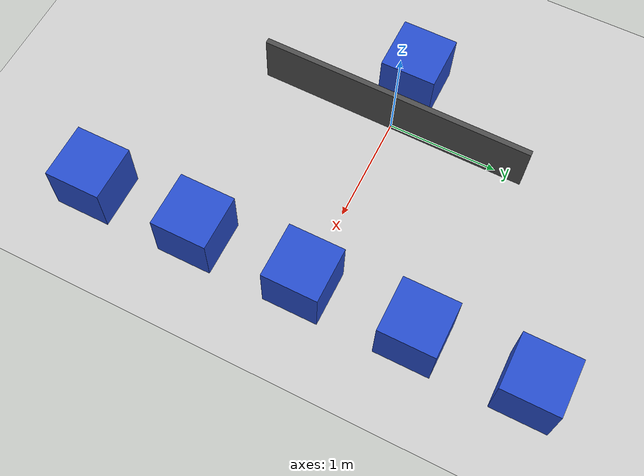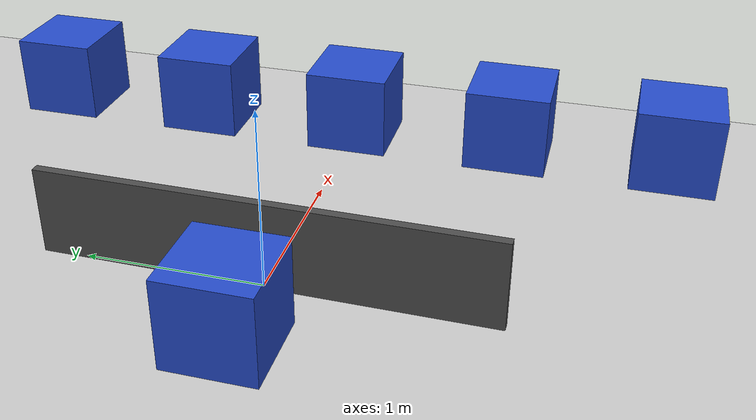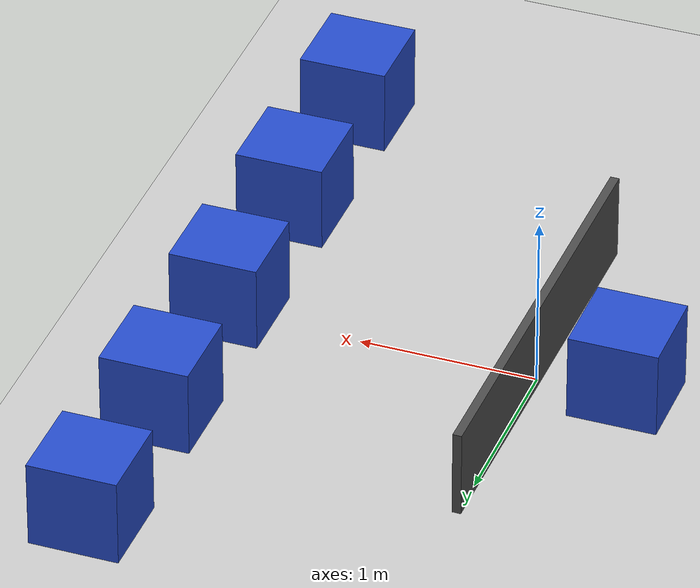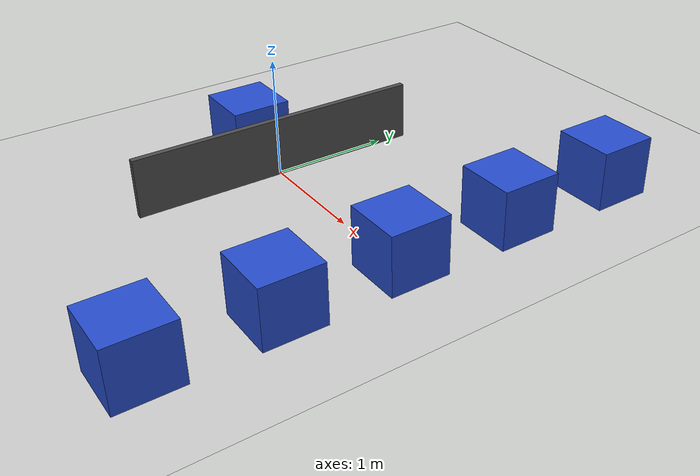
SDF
<sdf version="1.4">
 <world name="caixas_parede">
  <scene><ambient>0.8 0.8 0.8 1</ambient><background>0.7 0.7 0.7 1</background><shadows>true</shadows></scene>
  <include><uri>model://sun</uri><pose>-2.0 2.0 2.0 0 0 0</pose></include>
  <include><uri>model://caixas_parede/pisosala</uri><pose>0 0 0 0 0 -1.6</pose></include>
  <include><uri>model://caixas_parede/parede_5m5</uri><pose>0.5 0.5 0.25 0 0 0</pose></include>
  <include><uri>model://caixas_parede/caixa_vermelha_01</uri><pose>-0.5 0 0.25 0 0 0</pose></include>
  <include><uri>model://caixas_parede/caixa_verde_01</uri><pose>1.75 2.0 0.25 0 0 0</pose></include>
  <include><uri>model://caixas_parede/caixa_azul_01</uri><pose>1.75 1.0 0.25 0 0 0</pose></include>
  <include><uri>model://caixas_parede/caixa_ciano_01</uri><pose>1.75 0 0.25 0 0 0</pose></include>
  <include><uri>model://caixas_parede/caixa_magenta_01</uri><pose>1.75 -1 0.25 0 0 0</pose></include>
  <include><uri>model://caixas_parede/caixa_amarela_01</uri><pose>1.75 -2 0.25 0 0 0</pose></include>
  <physics type="ode">
   <real_time_update_rate>1000.0</real_time_update_rate>
   <max_step_size>0.001</max_step_size>
   <real_time_factor>1</real_time_factor>
   <ode>
    <solver>
     <type>quick</type>
     <iters>150</iters>
     <precon_iters>0</precon_iters>
     <sor>1.400000</sor>
     <use_dynamic_moi_rescaling>1</use_dynamic_moi_rescaling>
    </solver>
    <constraints>
     <cfm>0.00001</cfm>
     <erp>0.2</erp>
     <contact_max_correcting_vel>2000.000000</contact_max_correcting_vel>
     <contact_surface_layer>0.01000</contact_surface_layer>
    </constraints>
   </ode>
  </physics>
 </world>
</sdf>

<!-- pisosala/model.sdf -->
<sdf version="1.6">
  <model name="piso_sala">
    <static>true</static>
    <link name="course_link">
      <collision name="course_collision">
        <geometry>
          <plane>
            <normal>0 0 1</normal>
            <size>7 5</size>
          </plane>
        </geometry>
        <surface>
          <friction>
            <ode>
              <mu>100</mu>
              <mu2>50</mu2>
            </ode>
          </friction>
        </surface>
      </collision>
      <visual name="course_visual">
        <cast_shadows>false</cast_shadows>
        <geometry>
	        <plane>
            <normal>0 0 1</normal>
            <size>7 5</size>
          </plane>
        </geometry>
	      <material>
          <script>
            <uri>model://caixas_coloridas/pisosala/materials/scripts</uri>
            <uri>model://caixas_coloridas/pisosala/materials/textures</uri>
            <name>pisosala</name>
          </script>
        </material>
      </visual>
    </link>
  </model>
</sdf>

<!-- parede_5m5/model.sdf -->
<sdf version='1.7'>
  <model name='parede_5m5'>
    <pose>0.711496 -3.02246 0 0 -0 0</pose>
    <link name='Wall_10'>
      <collision name='Wall_10_Collision'>
        <geometry>
          <box>
            <size>2.5 0.05 0.5</size>
          </box>
        </geometry>
        <pose>0 0 0 0 -0 0</pose>
      </collision>
      <visual name='Wall_10_Visual'>
        <pose>0 0 0 0 -0 0</pose>
        <geometry>
          <box>
            <size>2.5 0.05 0.5</size>
          </box>
        </geometry>
        <material>
          <script>
            <uri>file://media/materials/scripts/gazebo.material</uri>
            <name>Gazebo/DarkGrey</name>
          </script>
          <ambient>1 1 1 1</ambient>
        </material>
        <meta>
          <layer>0</layer>
        </meta>
      </visual>
      <pose>-0.5 -0.5 0 0 0 -1.58</pose>
    </link>
    <static>1</static>
  </model>
</sdf>

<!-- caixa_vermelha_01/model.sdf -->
<sdf version='1.7'>
  <model name='caixa_vermelha_01'>
    <pose>0 0 0 0 0 0</pose>
    <link name='caixa_01'>
      <inertial>
          <mass>1</mass>
          <inertia>
            <ixx>0.166667</ixx>
            <ixy>0</ixy>
            <ixz>0</ixz>
            <iyy>0.166667</iyy>
            <iyz>0</iyz>
            <izz>0.166667</izz>
          </inertia>
          <pose frame=''>0 0 0 0 -0 0</pose>
        </inertial>
      <collision name='caixa_01_Collision'>
        <geometry>
          <box>
            <size>0.5 0.5 0.5</size>
          </box>
        </geometry>
        <pose>0 0 0 0 0 0</pose>
      </collision>
      <visual name='caixa_01_Visual'>
        <pose>0 0 0 0 0 0</pose>
        <geometry>
          <box>
            <size>0.5 0.5 0.5</size>
          </box>
        </geometry>
        <material>
          <script>
            <uri>file://media/materials/scripts/gazebo.material</uri>
            <name>Gazebo/Blue</name>
          </script>

          <ambient>1 0 0 1</ambient>
        </material>
        <meta>
          <layer>0</layer>
        </meta>
      </visual>
      <pose>0 0 0 0 0 0</pose>
    </link>
    <static>1</static>
  </model>
</sdf>

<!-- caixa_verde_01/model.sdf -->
<sdf version='1.7'>
  <model name='caixa_verde_01'>
    <pose>0 0 0 0 0 0</pose>
    <link name='caixa_01'>
      <inertial>
          <mass>1</mass>
          <inertia>
            <ixx>0.166667</ixx>
            <ixy>0</ixy>
            <ixz>0</ixz>
            <iyy>0.166667</iyy>
            <iyz>0</iyz>
            <izz>0.166667</izz>
          </inertia>
          <pose frame=''>0 0 0 0 -0 0</pose>
        </inertial>
      <collision name='caixa_01_Collision'>
        <geometry>
          <box>
            <size>0.5 0.5 0.5</size>
          </box>
        </geometry>
        <pose>0 0 0 0 0 0</pose>
      </collision>
      <visual name='caixa_01_Visual'>
        <pose>0 0 0 0 0 0</pose>
        <geometry>
          <box>
            <size>0.5 0.5 0.5</size>
          </box>
        </geometry>
        <material>
          <script>
            <uri>file://media/materials/scripts/gazebo.material</uri>
            <name>Gazebo/Blue</name>
          </script>

          <ambient>0 1 0 1</ambient>
        </material>
        <meta>
          <layer>0</layer>
        </meta>
      </visual>
      <pose>0 0 0 0 0 0</pose>
    </link>
    <static>1</static>
  </model>
</sdf>

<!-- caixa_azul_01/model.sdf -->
<sdf version='1.7'>
  <model name='caixa_azul_01'>
    <pose>0 0 0 0 0 0</pose>
    <link name='caixa_01'>
      <inertial>
          <mass>1</mass>
          <inertia>
            <ixx>0.166667</ixx>
            <ixy>0</ixy>
            <ixz>0</ixz>
            <iyy>0.166667</iyy>
            <iyz>0</iyz>
            <izz>0.166667</izz>
          </inertia>
          <pose frame=''>0 0 0 0 -0 0</pose>
        </inertial>
      <collision name='caixa_01_Collision'>
        <geometry>
          <box>
            <size>0.5 0.5 0.5</size>
          </box>
        </geometry>
        <pose>0 0 0 0 0 0</pose>
      </collision>
      <visual name='caixa_01_Visual'>
        <pose>0 0 0 0 0 0</pose>
        <geometry>
          <box>
            <size>0.5 0.5 0.5</size>
          </box>
        </geometry>
        <material>
          <script>
            <uri>file://media/materials/scripts/gazebo.material</uri>
            <name>Gazebo/Blue</name>
          </script>

          <ambient>0 0 1 1</ambient>
        </material>
        <meta>
          <layer>0</layer>
        </meta>
      </visual>
      <pose>0 0 0 0 0 0</pose>
    </link>
    <static>1</static>
  </model>
</sdf>

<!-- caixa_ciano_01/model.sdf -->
<sdf version='1.7'>
  <model name='caixa_ciano_01'>
    <pose>0 0 0 0 0 0</pose>
    <link name='caixa_01'>
      <inertial>
          <mass>1</mass>
          <inertia>
            <ixx>0.166667</ixx>
            <ixy>0</ixy>
            <ixz>0</ixz>
            <iyy>0.166667</iyy>
            <iyz>0</iyz>
            <izz>0.166667</izz>
          </inertia>
          <pose frame=''>0 0 0 0 -0 0</pose>
        </inertial>
      <collision name='caixa_01_Collision'>
        <geometry>
          <box>
            <size>0.5 0.5 0.5</size>
          </box>
        </geometry>
        <pose>0 0 0 0 0 0</pose>
      </collision>
      <visual name='caixa_01_Visual'>
        <pose>0 0 0 0 0 0</pose>
        <geometry>
          <box>
            <size>0.5 0.5 0.5</size>
          </box>
        </geometry>
        <material>
          <script>
            <uri>file://media/materials/scripts/gazebo.material</uri>
            <name>Gazebo/Blue</name>
          </script>

          <ambient>0 1 1 1</ambient>
        </material>
        <meta>
          <layer>0</layer>
        </meta>
      </visual>
      <pose>0 0 0 0 0 0</pose>
    </link>
    <static>1</static>
  </model>
</sdf>

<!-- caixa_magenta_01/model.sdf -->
<sdf version='1.7'>
  <model name='caixa_magenta_01'>
    <pose>0 0 0 0 0 0</pose>
    <link name='caixa_01'>
      <inertial>
          <mass>1</mass>
          <inertia>
            <ixx>0.166667</ixx>
            <ixy>0</ixy>
            <ixz>0</ixz>
            <iyy>0.166667</iyy>
            <iyz>0</iyz>
            <izz>0.166667</izz>
          </inertia>
          <pose frame=''>0 0 0 0 -0 0</pose>
        </inertial>
      <collision name='caixa_01_Collision'>
        <geometry>
          <box>
            <size>0.5 0.5 0.5</size>
          </box>
        </geometry>
        <pose>0 0 0 0 0 0</pose>
      </collision>
      <visual name='caixa_01_Visual'>
        <pose>0 0 0 0 0 0</pose>
        <geometry>
          <box>
            <size>0.5 0.5 0.5</size>
          </box>
        </geometry>
        <material>
          <script>
            <uri>file://media/materials/scripts/gazebo.material</uri>
            <name>Gazebo/Blue</name>
          </script>

          <ambient>1 0 1 1</ambient>
        </material>
        <meta>
          <layer>0</layer>
        </meta>
      </visual>
      <pose>0 0 0 0 0 0</pose>
    </link>
    <static>1</static>
  </model>
</sdf>

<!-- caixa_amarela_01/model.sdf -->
<sdf version='1.7'>
  <model name='caixa_amarela_01'>
    <pose>0 0 0 0 0 0</pose>
    <link name='caixa_01'>
      <inertial>
          <mass>1</mass>
          <inertia>
            <ixx>0.166667</ixx>
            <ixy>0</ixy>
            <ixz>0</ixz>
            <iyy>0.166667</iyy>
            <iyz>0</iyz>
            <izz>0.166667</izz>
          </inertia>
          <pose frame=''>0 0 0 0 -0 0</pose>
        </inertial>
      <collision name='caixa_01_Collision'>
        <geometry>
          <box>
            <size>0.5 0.5 0.5</size>
          </box>
        </geometry>
        <pose>0 0 0 0 0 0</pose>
      </collision>
      <visual name='caixa_01_Visual'>
        <pose>0 0 0 0 0 0</pose>
        <geometry>
          <box>
            <size>0.5 0.5 0.5</size>
          </box>
        </geometry>
        <material>
          <script>
            <uri>file://media/materials/scripts/gazebo.material</uri>
            <name>Gazebo/Blue</name>
          </script>

          <ambient>1 1 0 1</ambient>
        </material>
        <meta>
          <layer>0</layer>
        </meta>
      </visual>
      <pose>0 0 0 0 0 0</pose>
    </link>
    <static>1</static>
  </model>
</sdf>
